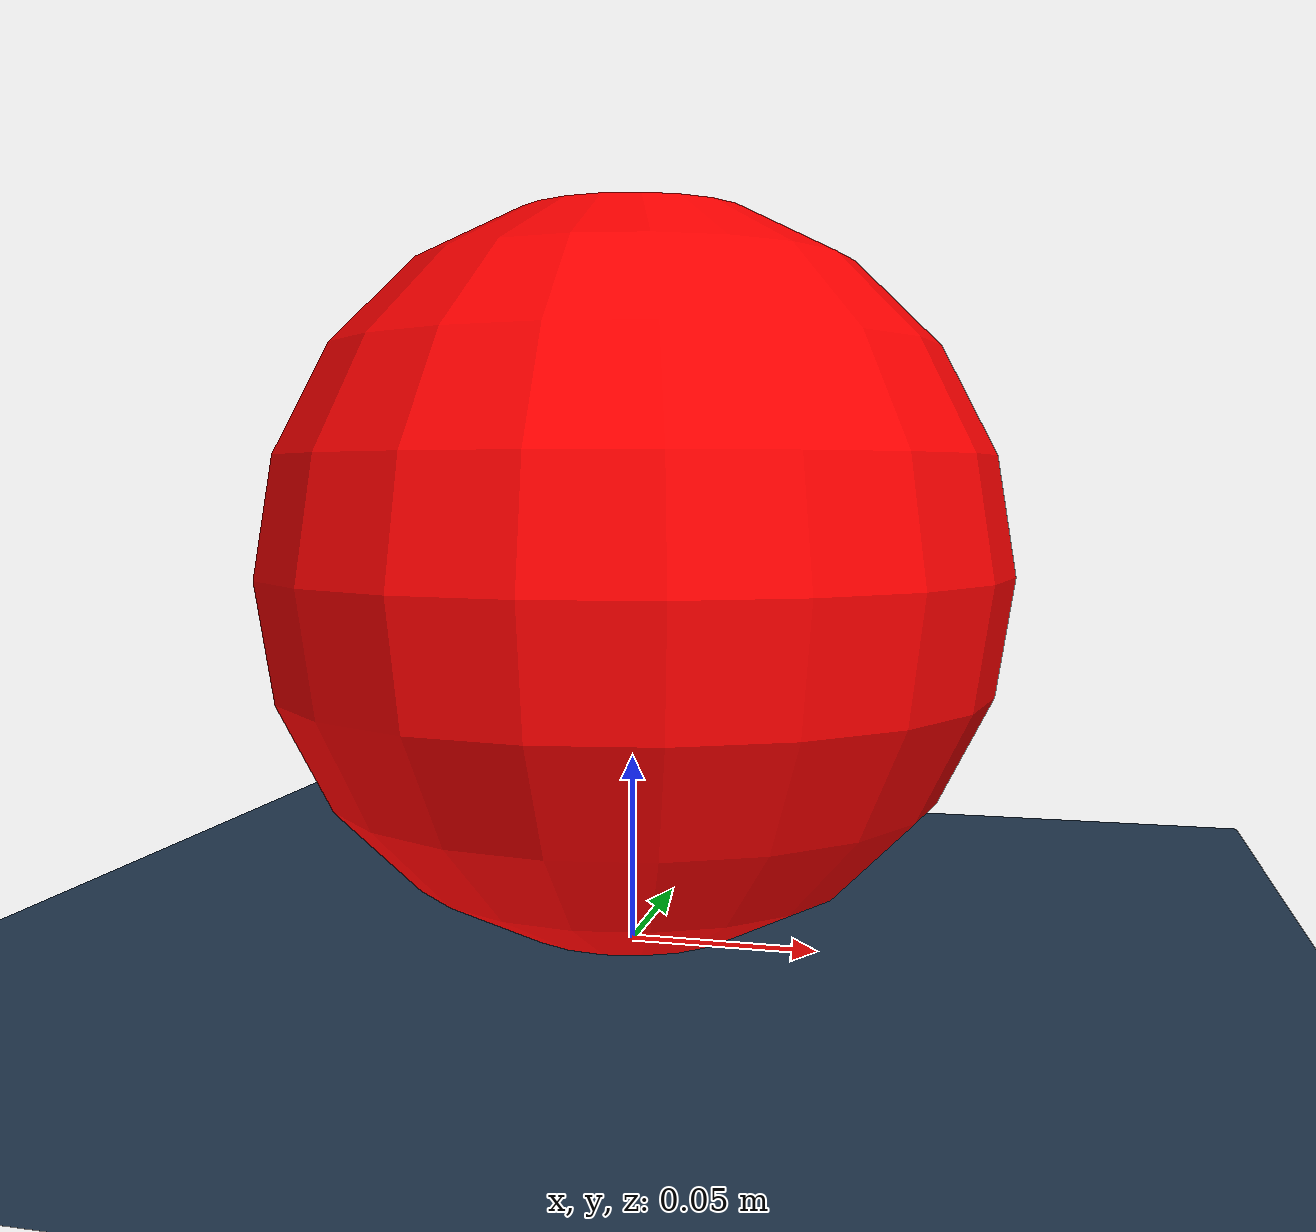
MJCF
<mujoco model="blob">
    <visual>
        <global offheight="720" offwidth="1280"/>
    </visual>

    <option timestep="0.05" gravity="0 0 -9.81"/>

    <asset>
        <texture type="skybox" builtin="gradient" rgb1="0.6 0.7 0.9" rgb2="0.3 0.3 0.4" width="512" height="3072"/>
        <texture type="2d" name="groundplane" builtin="checker" mark="edge" rgb1="0.2 0.3 0.4" rgb2="0.1 0.2 0.3" markrgb="0.8 0.8 0.8" width="300" height="300"/>
        <material name="groundplane" texture="groundplane" texuniform="true" texrepeat="5 5" reflectance="0.2"/>
    </asset>

    <worldbody>
        <light name="global_light" directional="true" diffuse="1 1 1" specular="0.3 0.3 0.3" castshadow="false"/>
        <light name="fill_light_0" pos="-5 0 10" dir="0 0 -1" directional="false" diffuse="1 1 1" specular="0.2 0.2 0.2"/>
        <light name="fill_light_1" pos="0 0 10" dir="0 0 -1" directional="false" diffuse="1 1 1" specular="0.2 0.2 0.2"/>
        <light name="fill_light_2" pos="5 0 10" dir="0 0 -1" directional="false" diffuse="1 1 1" specular="0.2 0.2 0.2"/>

        <geom name="floor" pos="0 0 0" size="0 0 0.05" type="plane" material="groundplane" contype="2" conaffinity="1"/>

        <body name="body_cell:0" pos="0.0 0.0 0.1">
            <joint name="x_joint_cell:0" type="slide" axis="1 0 0"/>
            <joint name="z_joint_cell:0" type="slide" axis="0 0 1"/>
            <geom name="cell:0" type="sphere" size="0.1" mass="1" contype="1" conaffinity="2" rgba="60 0 0 1"/>
            <site name="site_cell:0" pos="0 0 0" size="0.01"/>
        </body>

    </worldbody>

    <actuator>
        <motor joint="x_joint_cell:0" ctrlrange="-1 1" gear="5"/>
        <motor joint="z_joint_cell:0" ctrlrange="-1 1" gear="5"/>
    </actuator>
</mujoco>
